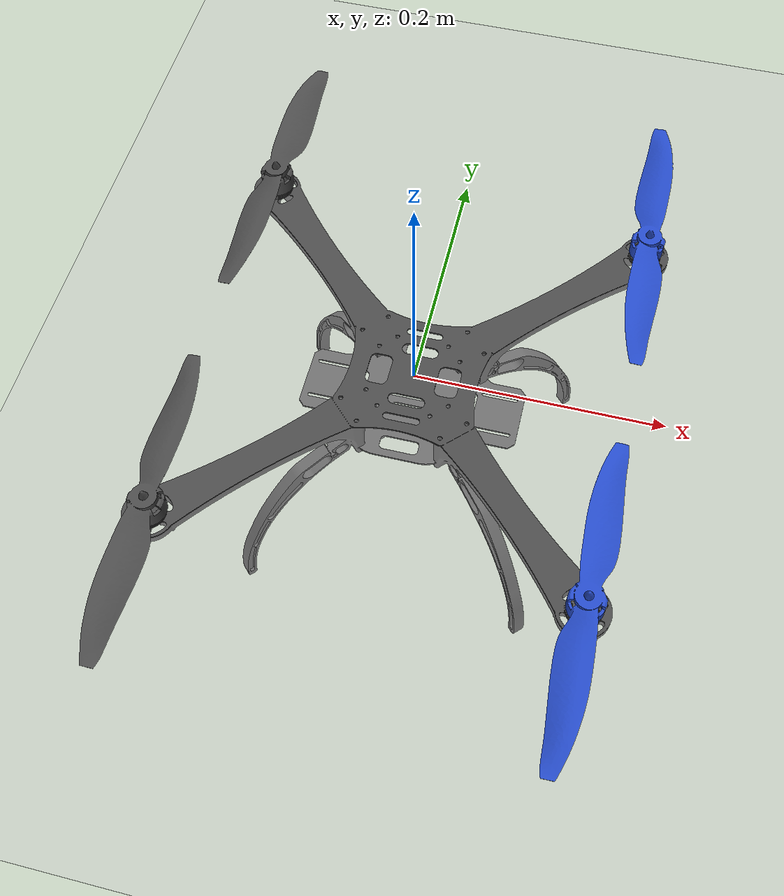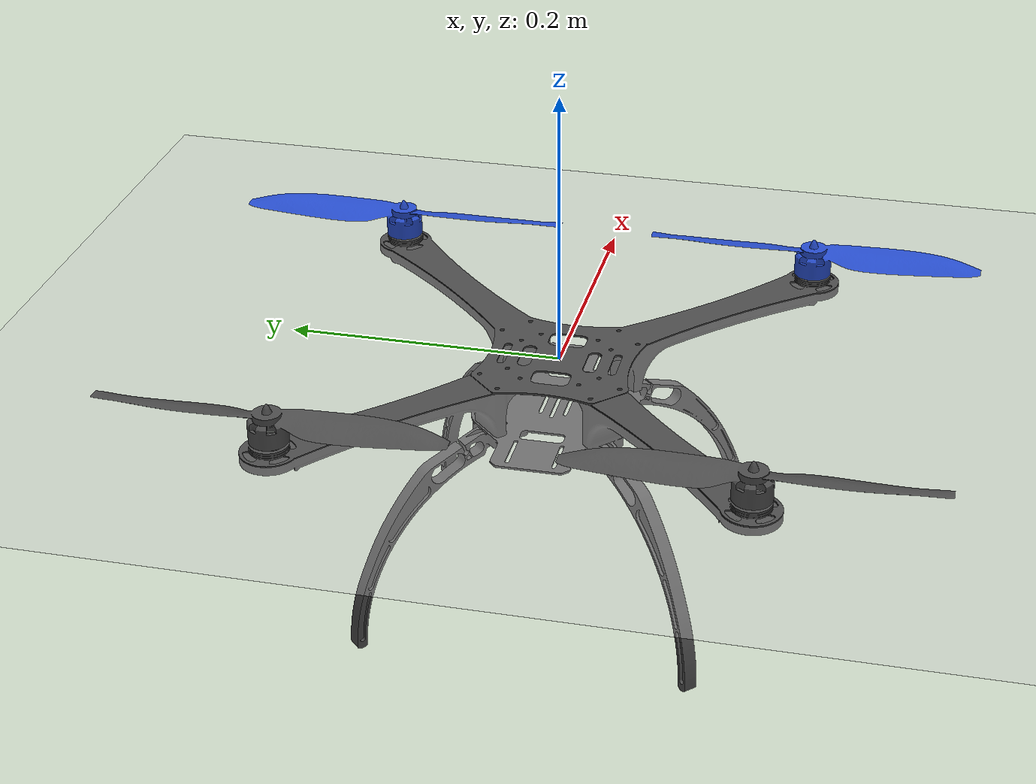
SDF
<sdf version="1.5">
 <world name="default">
  <include><uri>model://sun</uri></include>
  <include><uri>model://ground_plane</uri></include>
  <include><uri>model://lezl</uri></include>
  <include><uri>model://asphalt_plane</uri></include>
  <physics name="default_physics" default="0" type="ode">
   <gravity>0 0 -9.8066</gravity>
   <ode>
    <solver><iters>100</iters><sor>1.3</sor><use_dynamic_moi_rescaling>0</use_dynamic_moi_rescaling></solver>
    <constraints>
     <cfm>0</cfm>
     <erp>0.2</erp>
     <contact_max_correcting_vel>100</contact_max_correcting_vel>
     <contact_surface_layer>0.001</contact_surface_layer>
    </constraints>
   </ode>
   <max_step_size>0.001</max_step_size>
   <real_time_factor>1</real_time_factor>
   <real_time_update_rate>1000</real_time_update_rate>
   <magnetic_field>6e-06 2.3e-05 -4.2e-05</magnetic_field>
  </physics>
 </world>
</sdf>

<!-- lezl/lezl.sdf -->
<sdf version='1.6'>
  <model name='lezl'>
    <link name='base_link'>
      <pose frame=''>0 0 0 0 -0 0</pose>
      <inertial>
        <pose frame=''>0 0 0 0 -0 0</pose>
        <mass>1.5</mass>
        <inertia>
          <ixx>0.0347563</ixx>
          <ixy>0</ixy>
          <ixz>0</ixz>
          <iyy>0.0458929</iyy>
          <iyz>0</iyz>
          <izz>0.0977</izz>
        </inertia>
      </inertial>
      <collision name='base_link_inertia_collision'>
        <pose frame=''>0 0 0 0 -0 0</pose>
        <geometry>
          <box>
            <size>0.47 0.47 0.37</size>
          </box>
        </geometry>
        <surface>
          <contact>
            <ode>
              <min_depth>0.001</min_depth>
              <max_vel>0</max_vel>
            </ode>
          </contact>
          <friction>
            <ode/>
          </friction>
        </surface>
      </collision>
      <visual name='base_link_inertia_visual'>
        <pose frame=''>0.018 -0.0265 0 1.57 -0 0</pose>
        <geometry>
          <mesh>
            <scale>0.001 0.001 0.001</scale>
            <uri>model://lezl/meshes/f450_frame.stl</uri>
          </mesh>
        </geometry>
        <material>
          <script>
            <name>Gazebo/DarkGrey</name>
            <uri>file://media/materials/scripts/gazebo.material</uri>
          </script>
        </material>
      </visual>
      <gravity>1</gravity>
      <velocity_decay/>
      <self_collide>0</self_collide>
    </link>
    <link name='/imu_link'>
      <pose frame=''>0 0 0 0 -0 0</pose>
      <inertial>
        <pose frame=''>0 0 0 0 -0 0</pose>
        <mass>0.015</mass>
        <inertia>
          <ixx>1e-05</ixx>
          <ixy>0</ixy>
          <ixz>0</ixz>
          <iyy>1e-05</iyy>
          <iyz>0</iyz>
          <izz>1e-05</izz>
        </inertia>
      </inertial>
    </link>
    <joint name='/imu_joint' type='revolute'>
      <child>/imu_link</child>
      <parent>base_link</parent>
      <axis>
        <xyz>1 0 0</xyz>
        <limit>
          <lower>0</lower>
          <upper>0</upper>
          <effort>0</effort>
          <velocity>0</velocity>
        </limit>
        <dynamics>
          <spring_reference>0</spring_reference>
          <spring_stiffness>0</spring_stiffness>
        </dynamics>
        <use_parent_model_frame>1</use_parent_model_frame>
      </axis>
    </joint>
    <link name='rotor_0'>
      <pose frame=''>0.162 -0.162 0.007 0 -0 0</pose>
      <inertial>
        <pose frame=''>0 0 0 0 -0 0</pose>
        <mass>0.005</mass>
        <inertia>
          <ixx>9.75e-07</ixx>
          <ixy>0</ixy>
          <ixz>0</ixz>
          <iyy>0.000273104</iyy>
          <iyz>0</iyz>
          <izz>0.000274004</izz>
        </inertia>
      </inertial>
      <collision name='rotor_0_collision'>
        <pose frame=''>0 0 0 0 -0 0</pose>
        <geometry>
          <cylinder>
            <length>0.005</length>
            <radius>0.128</radius>
          </cylinder>
        </geometry>
        <surface>
          <contact>
            <ode/>
          </contact>
          <friction>
            <ode/>
          </friction>
        </surface>
      </collision>
      <visual name='rotor_0_visual'>
        <pose frame=''>0 0 0 1.57 -0 0</pose>
        <geometry>
          <mesh>
            <scale>0.001 0.001 0.001</scale>
            <uri>model://lezl/meshes/f450_prop_ccw.stl</uri>
          </mesh>
        </geometry>
        <material>
          <script>
            <name>Gazebo/Blue</name>
            <uri>file://media/materials/scripts/gazebo.material</uri>
          </script>
        </material>
      </visual>
      <gravity>1</gravity>
      <velocity_decay/>
      <self_collide>0</self_collide>
    </link>
    <joint name='rotor_0_joint' type='revolute'>
      <child>rotor_0</child>
      <parent>base_link</parent>
      <axis>
        <xyz>0 0 1</xyz>
        <limit>
          <lower>-1e+16</lower>
          <upper>1e+16</upper>
        </limit>
        <dynamics>
          <spring_reference>0</spring_reference>
          <spring_stiffness>0</spring_stiffness>
        </dynamics>
        <use_parent_model_frame>1</use_parent_model_frame>
      </axis>
    </joint>
    <link name='rotor_1'>
      <pose frame=''>-0.162 0.162 0.007 0 -0 0</pose>
      <inertial>
        <pose frame=''>0 0 0 0 -0 0</pose>
        <mass>0.005</mass>
        <inertia>
          <ixx>9.75e-07</ixx>
          <ixy>0</ixy>
          <ixz>0</ixz>
          <iyy>0.000273104</iyy>
          <iyz>0</iyz>
          <izz>0.000274004</izz>
        </inertia>
      </inertial>
      <collision name='rotor_1_collision'>
        <pose frame=''>0 0 0 0 -0 0</pose>
        <geometry>
          <cylinder>
            <length>0.005</length>
            <radius>0.128</radius>
          </cylinder>
        </geometry>
        <surface>
          <contact>
            <ode/>
          </contact>
          <friction>
            <ode/>
          </friction>
        </surface>
      </collision>
      <visual name='rotor_1_visual'>
        <pose frame=''>0 0 0 1.57 -0 0</pose>
        <geometry>
          <mesh>
            <scale>0.001 0.001 0.001</scale>
            <uri>model://lezl/meshes/f450_prop_ccw.stl</uri>
          </mesh>
        </geometry>
        <material>
          <script>
            <name>Gazebo/DarkGrey</name>
            <uri>file://media/materials/scripts/gazebo.material</uri>
          </script>
        </material>
      </visual>
      <gravity>1</gravity>
      <velocity_decay/>
      <self_collide>0</self_collide>
    </link>
    <joint name='rotor_1_joint' type='revolute'>
      <child>rotor_1</child>
      <parent>base_link</parent>
      <axis>
        <xyz>0 0 1</xyz>
        <limit>
          <lower>-1e+16</lower>
          <upper>1e+16</upper>
        </limit>
        <dynamics>
          <spring_reference>0</spring_reference>
          <spring_stiffness>0</spring_stiffness>
        </dynamics>
        <use_parent_model_frame>1</use_parent_model_frame>
      </axis>
    </joint>
    <link name='rotor_2'>
      <pose frame=''>0.162 0.162 0.007 0 -0 0</pose>
      <inertial>
        <pose frame=''>0 0 0 0 -0 0</pose>
        <mass>0.005</mass>
        <inertia>
          <ixx>9.75e-07</ixx>
          <ixy>0</ixy>
          <ixz>0</ixz>
          <iyy>0.000273104</iyy>
          <iyz>0</iyz>
          <izz>0.000274004</izz>
        </inertia>
      </inertial>
      <collision name='rotor_2_collision'>
        <pose frame=''>0 0 0 0 -0 0</pose>
        <geometry>
          <cylinder>
            <length>0.005</length>
            <radius>0.128</radius>
          </cylinder>
        </geometry>
        <surface>
          <contact>
            <ode/>
          </contact>
          <friction>
            <ode/>
          </friction>
        </surface>
      </collision>
      <visual name='rotor_2_visual'>
        <pose frame=''>0 0 0 1.57 -0 0</pose>
        <geometry>
          <mesh>
            <scale>0.001 0.001 0.001</scale>
            <uri>model://lezl/meshes/f450_prop_cw.stl</uri>
          </mesh>
        </geometry>
        <material>
          <script>
            <name>Gazebo/Blue</name>
            <uri>file://media/materials/scripts/gazebo.material</uri>
          </script>
        </material>
      </visual>
      <gravity>1</gravity>
      <velocity_decay/>
      <self_collide>0</self_collide>
    </link>
    <joint name='rotor_2_joint' type='revolute'>
      <child>rotor_2</child>
      <parent>base_link</parent>
      <axis>
        <xyz>0 0 1</xyz>
        <limit>
          <lower>-1e+16</lower>
          <upper>1e+16</upper>
        </limit>
        <dynamics>
          <spring_reference>0</spring_reference>
          <spring_stiffness>0</spring_stiffness>
        </dynamics>
        <use_parent_model_frame>1</use_parent_model_frame>
      </axis>
    </joint>
    <link name='rotor_3'>
      <pose frame=''>-0.162 -0.162 0.007 0 -0 0</pose>
      <inertial>
        <pose frame=''>0 0 0 0 -0 0</pose>
        <mass>0.005</mass>
        <inertia>
          <ixx>9.75e-07</ixx>
          <ixy>0</ixy>
          <ixz>0</ixz>
          <iyy>0.000273104</iyy>
          <iyz>0</iyz>
          <izz>0.000274004</izz>
        </inertia>
      </inertial>
      <collision name='rotor_3_collision'>
        <pose frame=''>0 0 0 0 -0 0</pose>
        <geometry>
          <cylinder>
            <length>0.005</length>
            <radius>0.128</radius>
          </cylinder>
        </geometry>
        <surface>
          <contact>
            <ode/>
          </contact>
          <friction>
            <ode/>
          </friction>
        </surface>
      </collision>
      <visual name='rotor_3_visual'>
        <pose frame=''>0 0 0 1.57 -0 0</pose>
        <geometry>
          <mesh>
            <scale>0.001 0.001 0.001</scale>
            <uri>model://lezl/meshes/f450_prop_cw.stl</uri>
          </mesh>
        </geometry>
        <material>
          <script>
            <name>Gazebo/DarkGrey</name>
            <uri>file://media/materials/scripts/gazebo.material</uri>
          </script>
        </material>
      </visual>
      <gravity>1</gravity>
      <velocity_decay/>
      <self_collide>0</self_collide>
    </link>
    <joint name='rotor_3_joint' type='revolute'>
      <child>rotor_3</child>
      <parent>base_link</parent>
      <axis>
        <xyz>0 0 1</xyz>
        <limit>
          <lower>-1e+16</lower>
          <upper>1e+16</upper>
        </limit>
        <dynamics>
          <spring_reference>0</spring_reference>
          <spring_stiffness>0</spring_stiffness>
        </dynamics>
        <use_parent_model_frame>1</use_parent_model_frame>
      </axis>
    </joint>
    <plugin name='rosbag' filename='librotors_gazebo_multirotor_base_plugin.so'>
      <robotNamespace/>
      <linkName>base_link</linkName>
      <rotorVelocitySlowdownSim>10</rotorVelocitySlowdownSim>
    </plugin>
    <plugin name='front_right_motor_model' filename='librotors_gazebo_motor_model.so'>
      <robotNamespace/>
      <jointName>rotor_0_joint</jointName>
      <linkName>rotor_0</linkName>
      <turningDirection>ccw</turningDirection>
      <timeConstantUp>0.0125</timeConstantUp>
      <timeConstantDown>0.025</timeConstantDown>
      <maxRotVelocity>1100</maxRotVelocity>
      <motorConstant>8.54858e-06</motorConstant>
      <momentConstant>0.06</momentConstant>
      <commandSubTopic>/gazebo/command/motor_speed</commandSubTopic>
      <motorNumber>0</motorNumber>
      <rotorDragCoefficient>0.000806428</rotorDragCoefficient>
      <rollingMomentCoefficient>1e-06</rollingMomentCoefficient>
      <motorSpeedPubTopic>/motor_speed/0</motorSpeedPubTopic>
      <rotorVelocitySlowdownSim>10</rotorVelocitySlowdownSim>
    </plugin>
    <plugin name='back_left_motor_model' filename='librotors_gazebo_motor_model.so'>
      <robotNamespace/>
      <jointName>rotor_1_joint</jointName>
      <linkName>rotor_1</linkName>
      <turningDirection>ccw</turningDirection>
      <timeConstantUp>0.0125</timeConstantUp>
      <timeConstantDown>0.025</timeConstantDown>
      <maxRotVelocity>1100</maxRotVelocity>
      <motorConstant>8.54858e-06</motorConstant>
      <momentConstant>0.06</momentConstant>
      <commandSubTopic>/gazebo/command/motor_speed</commandSubTopic>
      <motorNumber>1</motorNumber>
      <rotorDragCoefficient>0.000806428</rotorDragCoefficient>
      <rollingMomentCoefficient>1e-06</rollingMomentCoefficient>
      <motorSpeedPubTopic>/motor_speed/1</motorSpeedPubTopic>
      <rotorVelocitySlowdownSim>10</rotorVelocitySlowdownSim>
    </plugin>
    <plugin name='front_left_motor_model' filename='librotors_gazebo_motor_model.so'>
      <robotNamespace/>
      <jointName>rotor_2_joint</jointName>
      <linkName>rotor_2</linkName>
      <turningDirection>cw</turningDirection>
      <timeConstantUp>0.0125</timeConstantUp>
      <timeConstantDown>0.025</timeConstantDown>
      <maxRotVelocity>1100</maxRotVelocity>
      <motorConstant>8.54858e-06</motorConstant>
      <momentConstant>0.06</momentConstant>
      <commandSubTopic>/gazebo/command/motor_speed</commandSubTopic>
      <motorNumber>2</motorNumber>
      <rotorDragCoefficient>0.000806428</rotorDragCoefficient>
      <rollingMomentCoefficient>1e-06</rollingMomentCoefficient>
      <motorSpeedPubTopic>/motor_speed/2</motorSpeedPubTopic>
      <rotorVelocitySlowdownSim>10</rotorVelocitySlowdownSim>
    </plugin>
    <plugin name='back_right_motor_model' filename='librotors_gazebo_motor_model.so'>
      <robotNamespace/>
      <jointName>rotor_3_joint</jointName>
      <linkName>rotor_3</linkName>
      <turningDirection>cw</turningDirection>
      <timeConstantUp>0.0125</timeConstantUp>
      <timeConstantDown>0.025</timeConstantDown>
      <maxRotVelocity>1100</maxRotVelocity>
      <motorConstant>8.54858e-06</motorConstant>
      <momentConstant>0.06</momentConstant>
      <commandSubTopic>/gazebo/command/motor_speed</commandSubTopic>
      <motorNumber>3</motorNumber>
      <rotorDragCoefficient>0.000806428</rotorDragCoefficient>
      <rollingMomentCoefficient>1e-06</rollingMomentCoefficient>
      <motorSpeedPubTopic>/motor_speed/3</motorSpeedPubTopic>
      <rotorVelocitySlowdownSim>10</rotorVelocitySlowdownSim>
    </plugin>
    <plugin name='mavlink_interface' filename='librotors_gazebo_mavlink_interface.so'>
      <robotNamespace/>
      <imuSubTopic>/imu</imuSubTopic>
      <mavlink_addr>INADDR_ANY</mavlink_addr>
      <mavlink_udp_port>14560</mavlink_udp_port>
      <motorSpeedCommandPubTopic>/gazebo/command/motor_speed</motorSpeedCommandPubTopic>
      <control_channels>
        <channel name='rotor1'>
          <input_index>0</input_index>
          <input_offset>0</input_offset>
          <input_scaling>1000</input_scaling>
          <zero_position_disarmed>0</zero_position_disarmed>
          <zero_position_armed>100</zero_position_armed>
          <joint_control_type>velocity</joint_control_type>
          <joint_name>rotor_0_joint</joint_name>
        </channel>
        <channel name='rotor2'>
          <input_index>1</input_index>
          <input_offset>0</input_offset>
          <input_scaling>1000</input_scaling>
          <zero_position_disarmed>0</zero_position_disarmed>
          <zero_position_armed>100</zero_position_armed>
          <joint_control_type>velocity</joint_control_type>
          <joint_name>rotor_1_joint</joint_name>
        </channel>
        <channel name='rotor3'>
          <input_index>2</input_index>
          <input_offset>0</input_offset>
          <input_scaling>1000</input_scaling>
          <zero_position_disarmed>0</zero_position_disarmed>
          <zero_position_armed>100</zero_position_armed>
          <joint_control_type>velocity</joint_control_type>
          <joint_name>rotor_2_joint</joint_name>
        </channel>
        <channel name='rotor4'>
          <input_index>3</input_index>
          <input_offset>0</input_offset>
          <input_scaling>1000</input_scaling>
          <zero_position_disarmed>0</zero_position_disarmed>
          <zero_position_armed>100</zero_position_armed>
          <joint_control_type>velocity</joint_control_type>
          <joint_name>rotor_3_joint</joint_name>
        </channel>
        <channel name="gimbal_roll">
          <input_index>4</input_index>
          <input_offset>0</input_offset>
          <input_scaling>-3.1415</input_scaling>
          <zero_position_disarmed>0</zero_position_disarmed>
          <zero_position_armed>0</zero_position_armed>
          <joint_control_type>position_gztopic</joint_control_type>
          <gztopic>/gimbal_roll_cmd</gztopic>
          <joint_name>camera_gimbal::cgo3_camera_joint</joint_name>
        </channel>
        <channel name="gimbal_pitch">
          <input_index>5</input_index>
          <input_offset>0</input_offset>
          <input_scaling>3.1415</input_scaling>
          <zero_position_disarmed>0</zero_position_disarmed>
          <zero_position_armed>0</zero_position_armed>
          <joint_control_type>position_gztopic</joint_control_type>
          <gztopic>/gimbal_pitch_cmd</gztopic>
          <joint_name>camera_gimbal::cgo3_camera_joint</joint_name>
        </channel>
      </control_channels>
    </plugin>
    <static>0</static>
    <plugin name='rotors_gazebo_imu_plugin' filename='librotors_gazebo_imu_plugin.so'>
      <robotNamespace/>
      <linkName>/imu_link</linkName>
      <imuTopic>/imu</imuTopic>
      <gyroscopeNoiseDensity>0.0003394</gyroscopeNoiseDensity>
      <gyroscopeRandomWalk>3.8785e-05</gyroscopeRandomWalk>
      <gyroscopeBiasCorrelationTime>1000.0</gyroscopeBiasCorrelationTime>
      <gyroscopeTurnOnBiasSigma>0.0087</gyroscopeTurnOnBiasSigma>
      <accelerometerNoiseDensity>0.004</accelerometerNoiseDensity>
      <accelerometerRandomWalk>0.006</accelerometerRandomWalk>
      <accelerometerBiasCorrelationTime>300.0</accelerometerBiasCorrelationTime>
      <accelerometerTurnOnBiasSigma>0.196</accelerometerTurnOnBiasSigma>
    </plugin>

  </model>
</sdf>
